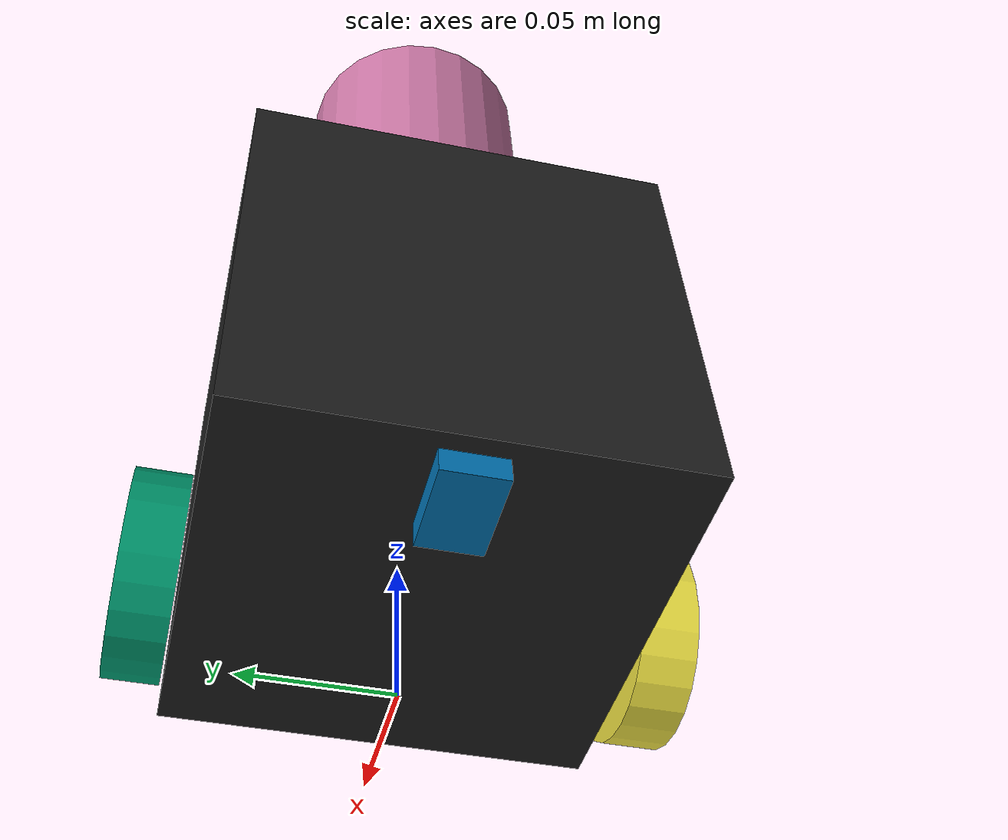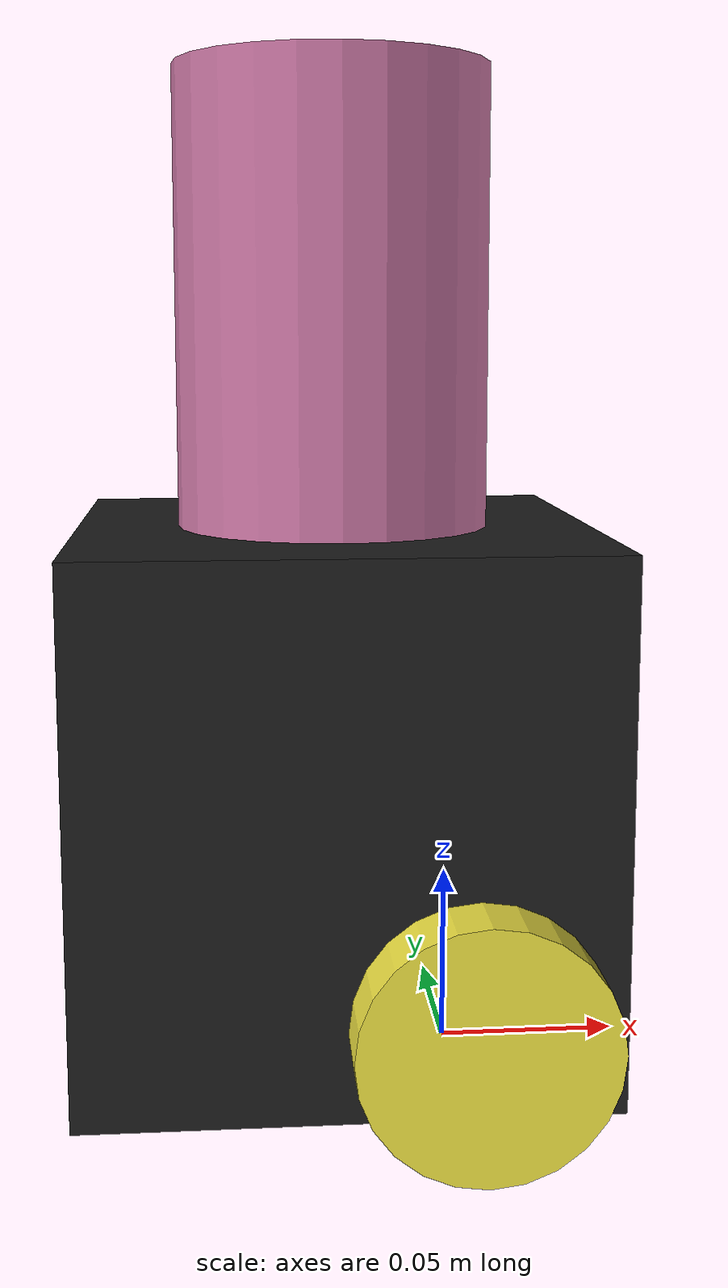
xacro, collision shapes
<?xml version="1.0" ?>
<robot name="turtlebot3_burger" xmlns:xacro="http://ros.org/wiki/xacro">
  <xacro:include filename="$(find turtlebot_velodyne)/urdf/common_properties.xacro"/>
  <xacro:include filename="$(find turtlebot_velodyne)/urdf/turtlebot_velodyne.gazebo.xacro"/>

  <link name="base_footprint"/>

  <joint name="base_joint" type="fixed">
    <parent link="base_footprint"/>
    <child link="base_link"/>
    <origin xyz="0.0 0.0 0.010" rpy="0 0 0"/>
  </joint>

  <link name="base_link">
    <visual>
      <origin xyz="-0.032 0 0.0" rpy="0 0 0"/>
      <geometry>
        <mesh filename="package://turtlebot_velodyne/meshes/bases/burger_base.stl" scale="0.001 0.001 0.001"/>
      </geometry>
      <material name="light_black"/>
    </visual>

    <collision>
      <origin xyz="-0.032 0 0.070" rpy="0 0 0"/>
      <geometry>
        <box size="0.140 0.140 0.143"/>
      </geometry>
    </collision>

    <inertial>
      <origin xyz="0 0 0" rpy="0 0 0"/>
      <mass value="8.2573504e-01"/>
      <inertia ixx="2.2124416e-03" ixy="-1.2294101e-05" ixz="3.4938785e-05"
               iyy="2.1193702e-03" iyz="-5.0120904e-06"
               izz="2.0064271e-03" />
    </inertial>
  </link>

  <joint name="wheel_left_joint" type="continuous">
    <parent link="base_link"/>
    <child link="wheel_left_link"/>
    <origin xyz="0.0 0.08 0.023" rpy="-1.57 0 0"/>
    <axis xyz="0 0 1"/>
  </joint>

  <link name="wheel_left_link">
    <visual>
      <origin xyz="0 0 0" rpy="1.57 0 0"/>
      <geometry>
        <mesh filename="package://turtlebot_velodyne/meshes/wheels/left_tire.stl" scale="0.001 0.001 0.001"/>
      </geometry>
      <material name="dark"/>
    </visual>

    <collision>
      <origin xyz="0 0 0" rpy="0 0 0"/>
      <geometry>
        <cylinder length="0.018" radius="0.033"/>
      </geometry>
    </collision>

    <inertial>
      <origin xyz="0 0 0" />
      <mass value="2.8498940e-02" />
      <inertia ixx="1.1175580e-05" ixy="-4.2369783e-11" ixz="-5.9381719e-09"
               iyy="1.1192413e-05" iyz="-1.4400107e-11"
               izz="2.0712558e-05" />
      </inertial>
  </link>

  <joint name="wheel_right_joint" type="continuous">
    <parent link="base_link"/>
    <child link="wheel_right_link"/>
    <origin xyz="0.0 -0.080 0.023" rpy="-1.57 0 0"/>
    <axis xyz="0 0 1"/>
  </joint>

  <link name="wheel_right_link">
    <visual>
      <origin xyz="0 0 0" rpy="1.57 0 0"/>
      <geometry>
        <mesh filename="package://turtlebot_velodyne/meshes/wheels/right_tire.stl" scale="0.001 0.001 0.001"/>
      </geometry>
      <material name="dark"/>
    </visual>

    <collision>
      <origin xyz="0 0 0" rpy="0 0 0"/>
      <geometry>
        <cylinder length="0.018" radius="0.033"/>
      </geometry>
    </collision>

    <inertial>
      <origin xyz="0 0 0" />
      <mass value="2.8498940e-02" />
      <inertia ixx="1.1175580e-05" ixy="-4.2369783e-11" ixz="-5.9381719e-09"
               iyy="1.1192413e-05" iyz="-1.4400107e-11"
               izz="2.0712558e-05" />
      </inertial>
  </link>

  <joint name="caster_back_joint" type="fixed">
    <parent link="base_link"/>
    <child link="caster_back_link"/>
    <origin xyz="-0.081 0 -0.004" rpy="-1.57 0 0"/>
  </joint>

  <link name="caster_back_link">
    <collision>
      <origin xyz="0 0.001 0" rpy="0 0 0"/>
      <geometry>
        <box size="0.030 0.009 0.020"/>
      </geometry>
    </collision>

    <inertial>
      <origin xyz="0 0 0" />
      <mass value="0.005" />
      <inertia ixx="0.001" ixy="0.0" ixz="0.0"
               iyy="0.001" iyz="0.0"
               izz="0.001" />
    </inertial>
  </link>

  <joint name="imu_joint" type="fixed">
    <parent link="base_link"/>
    <child link="imu_link"/>
    <origin xyz="-0.032 0 0.068" rpy="0 0 0"/>
  </joint>

  <link name="imu_link"/>

  <xacro:include filename="$(find turtlebot_velodyne)/urdf/HDL-32E.urdf.xacro"/>
  <xacro:HDL-32E parent="base_link" name="velodyne2" topic="/velodyne_points2" organize_cloud="false" hz="10" samples="220" gpu="false">
    <origin xyz="-0.032 0 0.12" rpy="0 0 0" />
  </xacro:HDL-32E>

</robot>

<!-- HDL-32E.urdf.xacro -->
<robot xmlns:xacro="http://www.ros.org/wiki/xacro" name="HDL-32E">
  <xacro:property name="M_PI" value="3.1415926535897931" />
  <xacro:macro name="HDL-32E" params="*origin parent:=base_link name:=velodyne topic:=/velodyne_points organize_cloud:=false hz:=10 lasers:=32 samples:=2187 collision_range:=0.3 min_range:=0.9 max_range:=130.0 noise:=0.008 min_angle:=-${M_PI} max_angle:=${M_PI} gpu:=false">

    <joint name="${name}_base_mount_joint" type="fixed">
      <xacro:insert_block name="origin" />
      <parent link="${parent}"/>
      <child link="${name}_base_link"/>
    </joint>

    <link name="${name}_base_link">
      <inertial>
        <mass value="0.114"/>
        <origin xyz="0 0 0.07212"/>
        <inertia ixx="${(1.0 * (3.0*0.04267*0.04267 + 0.14424*0.14424)) / 12.0}" ixy="0" ixz="0"
          iyy="${(1.0 * (3.0*0.04267*0.04267 + 0.14424*0.14424)) / 12.0}" iyz="0"
          izz="${0.5 * 1.0 * (0.04267*0.04267)}"/>
      </inertial>
      <visual>
        <geometry>
          <mesh filename="package://turtlebot_velodyne/meshes/HDL32E_base.dae" />
        </geometry>
      </visual>
      <collision>
        <origin rpy="0 0 0" xyz="0 0 0.07212"/>
        <geometry>
          <cylinder radius="0.04267" length="0.14424"/>
        </geometry>
      </collision>
    </link>

    <joint name="${name}_base_scan_joint" type="fixed" >
      <origin xyz="0 0 0.09081" rpy="0 0 0" />
      <parent link="${name}_base_link" />
      <child link="${name}"/>
    </joint>

    <link name="${name}">
      <inertial>
        <mass value="0.01"/>
        <origin xyz="0 0 0"/>
        <inertia ixx="1e-7" ixy="0" ixz="0" iyy="1e-7" iyz="0" izz="1e-7"/>
      </inertial>
      <visual>
        <origin xyz="0 0 -0.09081" rpy="0 0 0" />
        <geometry>
          <mesh filename="package://turtlebot_velodyne/meshes/HDL32E_scan.dae" />
        </geometry>
      </visual>
      <collision>
        <geometry>
          <sphere radius="0"/>
        </geometry>
      </collision>
    </link>

    <!-- Gazebo requires the velodyne_gazebo_plugins package -->
    <gazebo reference="${name}">
      <xacro:if value="${gpu}">
        <sensor type="gpu_ray" name="${name}-HDL32E">
          <pose>0 0 0 0 0 0</pose>
          <visualize>false</visualize>
          <update_rate>${hz}</update_rate>
          <ray>
            <scan>
              <horizontal>
                <samples>${samples}</samples>
                <resolution>1</resolution>
                <min_angle>${min_angle}</min_angle>
                <max_angle>${max_angle}</max_angle>
              </horizontal>
              <vertical>
                <samples>${lasers}</samples>
                <resolution>1</resolution>
                <min_angle>-${30.67*M_PI/180.0}</min_angle>
                <max_angle> ${10.67*M_PI/180.0}</max_angle>
              </vertical>
            </scan>
            <range>
              <min>${collision_range}</min>
              <max>${max_range+1}</max>
              <resolution>0.001</resolution>
            </range>
            <noise>
              <type>gaussian</type>
              <mean>0.0</mean>
              <stddev>0.0</stddev>
            </noise>
          </ray>
          <plugin name="gazebo_ros_laser_controller" filename="libgazebo_ros_velodyne_gpu_laser.so">
            <topicName>${topic}</topicName>
            <frameName>${name}</frameName>
            <organize_cloud>${organize_cloud}</organize_cloud>
            <min_range>${min_range}</min_range>
            <max_range>${max_range}</max_range>
            <gaussianNoise>${noise}</gaussianNoise>
          </plugin>
        </sensor>
      </xacro:if>
      <xacro:unless value="${gpu}">
        <sensor type="ray" name="${name}-HDL32E">
          <pose>0 0 0 0 0 0</pose>
          <visualize>false</visualize>
          <update_rate>${hz}</update_rate>
          <ray>
            <scan>
              <horizontal>
                <samples>${samples}</samples>
                <resolution>1</resolution>
                <min_angle>${min_angle}</min_angle>
                <max_angle>${max_angle}</max_angle>
              </horizontal>
              <vertical>
                <samples>${lasers}</samples>
                <resolution>1</resolution>
                <min_angle>-${30.67*M_PI/180.0}</min_angle>
                <max_angle> ${10.67*M_PI/180.0}</max_angle>
              </vertical>
            </scan>
            <range>
              <min>${collision_range}</min>
              <max>${max_range+1}</max>
              <resolution>0.001</resolution>
            </range>
            <noise>
              <type>gaussian</type>
              <mean>0.0</mean>
              <stddev>0.0</stddev>
            </noise>
          </ray>
          <plugin name="gazebo_ros_laser_controller" filename="libgazebo_ros_velodyne_laser.so">
            <topicName>${topic}</topicName>
            <frameName>${name}</frameName>
            <organize_cloud>${organize_cloud}</organize_cloud>
            <min_range>${min_range}</min_range>
            <max_range>${max_range}</max_range>
            <gaussianNoise>${noise}</gaussianNoise>
          </plugin>
        </sensor>
      </xacro:unless>
    </gazebo>

  </xacro:macro>
</robot>
